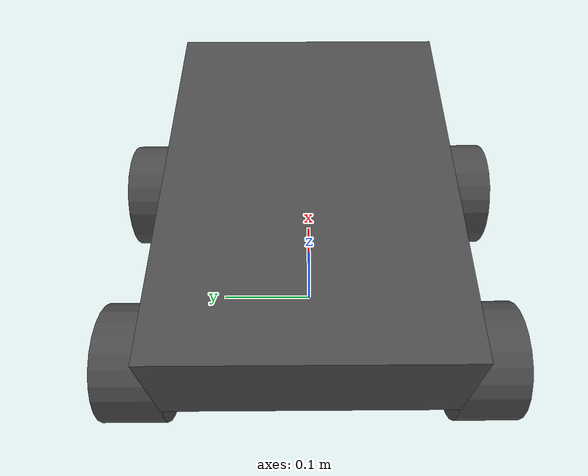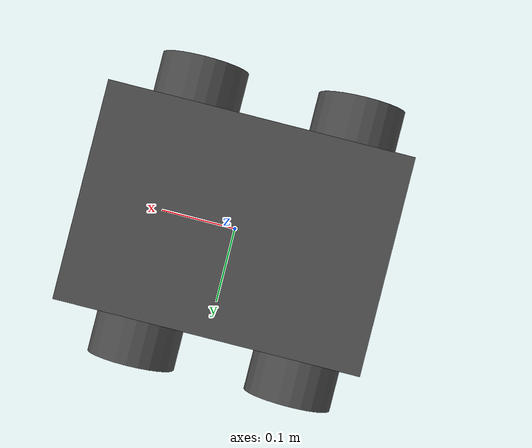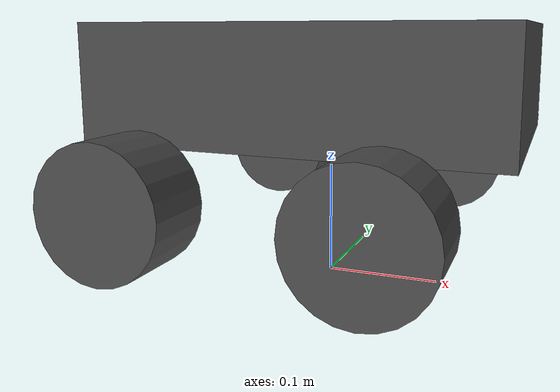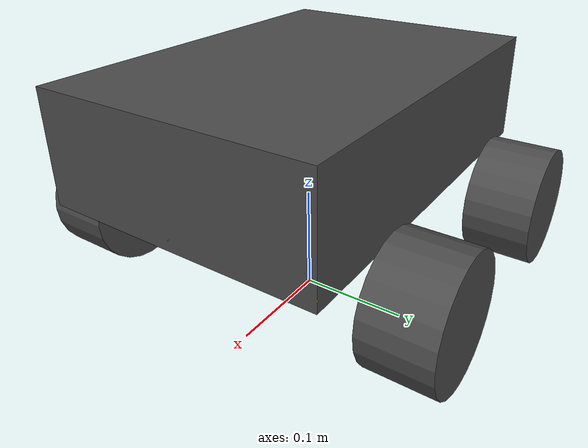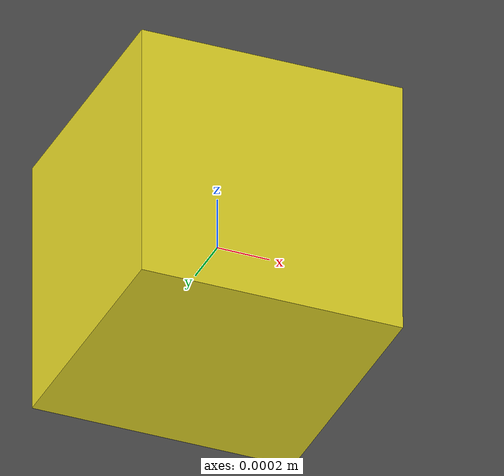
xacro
<?xml version="1.0"?>
<!-- Laelaps Simulation -->
<robot name="laelaps" xmlns:xacro="http://www.ros.org/wiki/xacro">
  <!-- Constants for robot dimensions -->
  <xacro:property name="PI" value="3.1415926535897931"/>
  <xacro:property name="body_mass" value="35"/> <!-- mass of laelaps' body -->
  <xacro:property name="body_width" value="0.25"/> <!-- sizeY of body-->
  <xacro:property name="body_length" value="0.35"/> <!-- sizeX of body -->
  <xacro:property name="body_height" value="0.10"/> <!-- sizeZ of body -->
  <xacro:property name="body_z_offset" value="0.09"/> <!-- body ground clearance -->
  <xacro:property name="camera_link" value="0.02"/> <!-- camera box size -->
  <xacro:property name="laser_y_offset" value="0.063"/> <!-- distance from centerline to laser-->
  <xacro:property name="laser_yaw" value="${15*(PI/180)}"/>

  <!-- Import Rviz colors -->
  <xacro:include filename="$(find laelaps_description)/urdf/laelaps_wheel.xacro" />
  <xacro:include filename="$(find laelaps_description)/urdf/laelaps_laser.xacro" />
  <xacro:include filename="$(find laelaps_description)/urdf/laelaps_camera.xacro" />
  <xacro:include filename="$(find laelaps_description)/urdf/laelaps_imu.xacro" />
  <xacro:include filename="$(find laelaps_description)/urdf/laelaps_gps.xacro" />
  <!-- BASE-FOOTPRINT -->
  <link name="base_footprint">
    <visual>
        <origin xyz="0 0 0" rpy="0 0 0" />
        <geometry>
            <box size="0.001 0.001 0.001" />
        </geometry>
    </visual>
  </link>
  <gazebo reference="base_footprint">
    <material>Gazebo/Yellow</material>
    <turnGravityOff>false</turnGravityOff>
  </gazebo>

  <joint name="base_footprint_joint" type="fixed">
    <origin xyz="0 0 ${body_z_offset}" rpy="0 0 0" />
    <parent link="base_footprint"/>
    <child link="base_link" />
  </joint>
  <!-- Body Link -->
  <link name="base_link">
    <visual>
      <origin xyz="0 0 ${body_z_offset}" rpy="0 0 0"/>
      <geometry>
        <box size="${body_length} ${body_width} ${body_height}"/>
      </geometry>
      <material name="DarkGrey"/>
    </visual>
    <collision>
      <origin xyz="0 0 0" rpy="0 0 0"/>
      <geometry>
        <box size="${body_length} ${body_width} ${body_height}"/>
      </geometry>
    </collision>
    <inertial>
      <origin xyz="0 0 0" rpy="0 0 0"/>
      <mass value="${body_mass}"/>
      <inertia
          ixx="${(body_mass/12.0) * (body_width*body_width + body_height*body_height)}" ixy="0.0" ixz="0.0"
          iyy="${(body_mass/12.0) * (body_height*body_height + body_length*body_length)}" iyz="0.0"
          izz="${(body_mass/12.0) * (body_width*body_width + body_length*body_length)}"/>
    </inertial>
  </link>
  <gazebo reference="base_link">
    <material>Gazebo/DarkGrey</material>
  </gazebo>

  <!-- Wheels -->
  <laelaps_wheel fb="front" lr="right" parent="base_link" translateX="1" translateY="-1" flipY="1"/>
  <laelaps_wheel fb="front" lr="left" parent="base_link" translateX="1" translateY="1" flipY="-1"/>
  <laelaps_wheel fb="back" lr="right" parent="base_link" translateX="-1" translateY="-1" flipY="1"/>
  <laelaps_wheel fb="back" lr="left" parent="base_link" translateX="-1" translateY="1" flipY="-1"/>

  <!-- Cameras -->
  <laelaps_camera index="0" parent="base_link" translateX="${body_length/2-camera_link}" translateY="0" translateZ="${body_height-camera_link}"/>

  <!-- Lasers -->
  <laelaps_laser index="0" parent="base_link" translateX="${body_length/2}" translateY="0" translateZ="${body_height/2}" yaw="0"/>

  <!-- Simulated GPS -->
  <laelaps_gps index="0" parent="base_link" translateX="${body_length/2}" translateY="${body_width/2}" translateZ="${body_height/2}" yaw="0"/>

  <!-- IMU -->

  <!-- Drivetrain -->
  <gazebo>
    <plugin name="skid_steer_drive_controller" filename="libgazebo_ros_skid_steer_drive.so">
      <robotNamespace>/</robotNamespace>
      <alwaysOn>true</alwaysOn>
      <updateRate>100.0</updateRate>
      <leftFrontJoint>front_left_wheel_joint</leftFrontJoint>
      <rightFrontJoint>front_right_wheel_joint</rightFrontJoint>
      <leftRearJoint>back_left_wheel_joint</leftRearJoint>
      <rightRearJoint>back_right_wheel_joint</rightRearJoint>
      <wheelSeparation>${body_width}</wheelSeparation>
      <wheelDiameter>${2*wheel_radius}</wheelDiameter>
      <torque>100</torque>
      <broadcastTF>1</broadcastTF>
      <odometryFrame>odom</odometryFrame>
      <commandTopic>cmd_vel</commandTopic>
      <odometryTopic>odom</odometryTopic>
      <robotBaseFrame>base_footprint</robotBaseFrame>
    </plugin>
  </gazebo>
  <gazebo>
    <plugin name="gazebo_ros_control" filename="libgazebo_ros_control.so">
      <robotNamespace>/</robotNamespace>
    </plugin>
  </gazebo>
</robot>

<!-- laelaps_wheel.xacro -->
<!-- Laelaps Simulation - Wheel -->
<robot name="laelaps_wheel" xmlns:xacro="http://www.ros.org/wiki/xacro">
  <!-- Constants for robot dimensions -->
  <xacro:property name="wheel_radius" value="0.055"/>
  <xacro:property name="wheel_height" value="0.06"/>
  <xacro:property name="wheel_mass" value="2.5"/>
  <xacro:property name="base_x_origin_to_wheel_origin" value="0.10"/>
  <xacro:property name="base_x_origin_to_wheel_origin_offset" value="-0.015"/>
  <xacro:property name="base_y_origin_to_wheel_origin" value="0.16"/>
  <xacro:property name="base_z_origin_to_wheel_origin" value="0.00"/>

  <xacro:macro name="cylinder_inertia" params="m r h">
    <inertia ixx="${m*(3*r*r+h*h)/12}" ixy="0" ixz="0"
             izz="${m*(3*r*r+h*h)/12}" iyz="0"
             iyy="${m*r*r/2}"/>
  </xacro:macro>

  <xacro:macro name="laelaps_wheel" params="fb lr parent translateX translateY flipY">
    <link name="${fb}_${lr}_wheel">
      <visual>
        <origin xyz="0 0 0" rpy="${flipY*PI/2} 0 0"/>
        <geometry>
          <cylinder length="${wheel_height}" radius="${wheel_radius}"/>
        </geometry>
        <material name="DarkGray"/>
      </visual>
      <collision>
        <origin xyz="0 0 0" rpy="${flipY*PI/2} 0 0"/>
        <geometry>
          <cylinder length="${wheel_height}" radius="${wheel_radius}"/>
        </geometry>
      </collision>
      <inertial>
        <mass value="${wheel_mass}"/>
        <origin xyz="0 0 0" rpy="${flipY*PI/2} 0 0"/>
        <cylinder_inertia m="${wheel_mass}" r="${wheel_radius}" h="${wheel_height}"/>
      </inertial>
    </link>
    <gazebo reference="${fb}_${lr}_wheel">
      <mu1 value="1.0"/>
      <mu2 value="1.0"/>
      <kp  value="10000000.0" />
      <kd  value="1.0" />
      <fdir1 value="1 0 0"/>
      <material>Gazebo/DarkGrey</material>
      <turnGravityOff>false</turnGravityOff>
    </gazebo>
    <joint name="${fb}_${lr}_wheel_joint" type="continuous">
      <parent link="${parent}"/>
      <child link="${fb}_${lr}_wheel"/>
      <origin xyz="${translateX * base_x_origin_to_wheel_origin + base_x_origin_to_wheel_origin_offset} ${translateY * base_y_origin_to_wheel_origin} ${base_z_origin_to_wheel_origin}" rpy="0 0 0"/>
      <axis xyz="0 1 0" rpy="0 0 0"/>
      <limit effort="100" velocity="100"/>
      <joint_properties damping="0.0" friction="0.0"/>
     </joint>
     <!-- Transmission is important to link the joints and the controller -->
    <transmission name="${fb}_${lr}_wheel_joint_trans">
      <type>transmission_interface/SimpleTransmission</type>
      <joint name="${fb}_${lr}_wheel_joint">
        <hardwareInterface>hardware_interface/EffortJointInterface</hardwareInterface>
      </joint>
      <actuator name="${fb}_${lr}_wheel_joint_motor">
        <hardwareInterface>hardware_interface/EffortJointInterface</hardwareInterface>
        <mechanicalReduction>1</mechanicalReduction>
      </actuator>
    </transmission>
  </xacro:macro>
</robot>

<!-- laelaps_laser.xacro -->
<robot name="laelaps_laser" xmlns:xacro="http://www.ros.org/wiki/xacro">
  <!-- constants -->
  <xacro:property name="size_x" value="0.001"/>
  <xacro:property name="size_y" value="0.001"/>
  <xacro:property name="size_z" value="0.001"/>
  <xacro:property name="fovH" value="0.5236"/> <!--30 degree view angle-->
  <xacro:property name="range_min" value="0.050"/>
  <xacro:property name="range_max" value="2.00"/>

  <xacro:macro name="laelaps_laser" params="index parent translateX translateY translateZ yaw">
    <link name="laser_${index}">
      <collision>
        <origin xyz="0 0 0" rpy="0 0 0"/>
        <geometry>
          <box size="${size_x} ${size_y} ${size_z}"/>
        </geometry>
       </collision>
       <visual>
         <origin xyz="0 0 0" rpy="0 0 0"/>
           <geometry>
             <box size="${size_x} ${size_y} ${size_z}"/>
           </geometry>
       </visual>
       <inertial>
         <mass value="1e-5"/>
         <origin xyz="0 0 0" rpy="0 0 0"/>
        <inertia ixx="1e-6" ixy="0" ixz="0" iyy="1e-6" iyz="0" izz="1e-6"/>
       </inertial>
    </link>
    <gazebo reference="laser_${index}">
      <sensor type="ray" name="head_hokuyo_sensor_${index}">
        <pose>0 0 0 0 0 0</pose>
        <visualize>true</visualize>
        <update_rate>20</update_rate>
        <ray>
          <scan>
            <horizontal>
              <samples>720</samples>
              <resolution>1</resolution>
              <min_angle>-0.2618</min_angle>
              <max_angle>0.2618</max_angle>
            </horizontal>
          </scan>
          <range>
            <min>0.05</min>
            <max>2.0</max>
            <resolution>0.01</resolution>
          </range>
          <noise>
            <type>gaussian</type>
            <mean>0.0</mean>
            <stddev>0.01</stddev>
          </noise>
        </ray>
        <plugin name="gazebo_ros_head_hokuyo_controller" filename="libgazebo_ros_laser.so">
          <topicName>/scan</topicName>
          <frameName>laser_0</frameName>
        </plugin>
      </sensor>
    </gazebo>
    <joint name="laser_joint_${index}" type="fixed">
      <axis xyz="0 1 0"/>
      <origin xyz="${translateX} ${translateY} ${translateZ}" rpy="0 0 ${yaw}"/>
      <parent link="${parent}"/>
      <child link="laser_${index}"/>
    </joint>
  </xacro:macro>
</robot>

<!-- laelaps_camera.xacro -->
<robot name="laelaps_camera" xmlns:xacro="http://www.ros.org/wiki/xacro">
  <!-- constants -->
  <xacro:property name="size_x" value="0.001"/>
  <xacro:property name="size_y" value="0.001"/>
  <xacro:property name="size_z" value="0.001"/>

  <xacro:macro name="laelaps_camera" params="index parent translateX translateY translateZ">
    <link name="camera_${index}">
      <collision>
        <origin xyz="0 0 0" rpy="0 0 0"/>
        <geometry>
          <box size="${size_x} ${size_y} ${size_z}"/>
        </geometry>
       </collision>
       <visual>
         <origin xyz="0 0 0" rpy="0 0 0"/>
           <geometry>
             <box size="${size_x} ${size_y} ${size_z}"/>
           </geometry>
       </visual>
       <inertial>
         <mass value="1e-5"/>
         <origin xyz="0 0 0" rpy="0 0 0"/>
        <inertia ixx="1e-6" ixy="0" ixz="0" iyy="1e-6" iyz="0" izz="1e-6"/>
       </inertial>
    </link>
    <gazebo reference="camera_${index}">
      <sensor type="camera" name="laelaps_camera_${index}">
        <update_rate>20.0</update_rate>
        <camera name="head">
          <horizontal_fov>1.3962634</horizontal_fov>
          <image>
            <width>800</width>
            <height>800</height>
            <format>R8G8B8</format>
          </image>
          <clip>
            <near>0.02</near>
            <far>300</far>
          </clip>
          <noise>
            <type>gaussian</type>
            <!-- Noise is sampled independently per pixel on each frame.
               That pixel's noise value is added to each of its color
               channels, which at that point lie in the range [0,1]. -->
            <mean>0.0</mean>
            <stddev>0.007</stddev>
          </noise>
        </camera>
        <plugin name="camera_controller" filename="libgazebo_ros_camera.so">
          <alwaysOn>true</alwaysOn>
          <updateRate>30.0</updateRate>
          <cameraName>laelaps/laelaps_camera</cameraName>
          <imageTopicName>image_raw</imageTopicName>
          <cameraInfoTopicName>camera_info</cameraInfoTopicName>
          <frameName>camera_link</frameName>
          <hackBaseline>0.07</hackBaseline>
          <distortionK1>0.0</distortionK1>
          <distortionK2>0.0</distortionK2>
          <distortionK3>0.0</distortionK3>
          <distortionT1>0.0</distortionT1>
          <distortionT2>0.0</distortionT2>
        </plugin>
      </sensor>
    </gazebo>
    <joint name="camera_joint_${index}" type="fixed">
      <axis xyz="0 1 0"/>
      <origin xyz="${translateX} ${translateY} ${translateZ}" rpy="0 0 0"/>
      <parent link="${parent}"/>
      <child link="camera_${index}"/>
    </joint>
  </xacro:macro>
</robot>

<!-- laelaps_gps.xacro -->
<robot name="laelaps_gps" xmlns:xacro="http://www.ros.org/wiki/xacro">
  <!-- constants -->
  <xacro:property name="size_x" value="0.001"/>
  <xacro:property name="size_y" value="0.001"/>
  <xacro:property name="size_z" value="0.001"/>

  <xacro:macro name="laelaps_gps" params="index parent translateX translateY translateZ yaw">
    <link name="gps_${index}">
      <collision>
        <origin xyz="0 0 0" rpy="0 0 0"/>
        <geometry>
          <box size="${size_x} ${size_y} ${size_z}"/>
        </geometry>
       </collision>
       <visual>
         <origin xyz="0 0 0" rpy="0 0 0"/>
           <geometry>
             <box size="${size_x} ${size_y} ${size_z}"/>
           </geometry>
       </visual>
       <inertial>
         <mass value="1e-5"/>
         <origin xyz="0 0 0" rpy="0 0 0"/>
        <inertia ixx="1e-6" ixy="0" ixz="0" iyy="1e-6" iyz="0" izz="1e-6"/>
       </inertial>
    </link>
    <joint name="gps_joint_${index}" type="fixed">
      <axis xyz="0 1 0"/>
      <origin xyz="${translateX} ${translateY} ${translateZ}" rpy="0 0 ${yaw}"/>
      <parent link="${parent}"/>
      <child link="gps_${index}"/>
    </joint>
    <gazebo>
      <plugin name="laelaps_gps_sim" filename="libhector_gazebo_ros_gps.so">
        <alwaysOn>1</alwaysOn>
        <updateRate>1.0</updateRate>
        <topicName>/fix</topicName>
        <frameName>gps_0</frameName>
        <referenceLatitude>40.3808827572</referenceLatitude>
        <referenceLongitude>-105.099170503</referenceLongitude>
      </plugin>
    </gazebo>
  </xacro:macro>
</robot>
